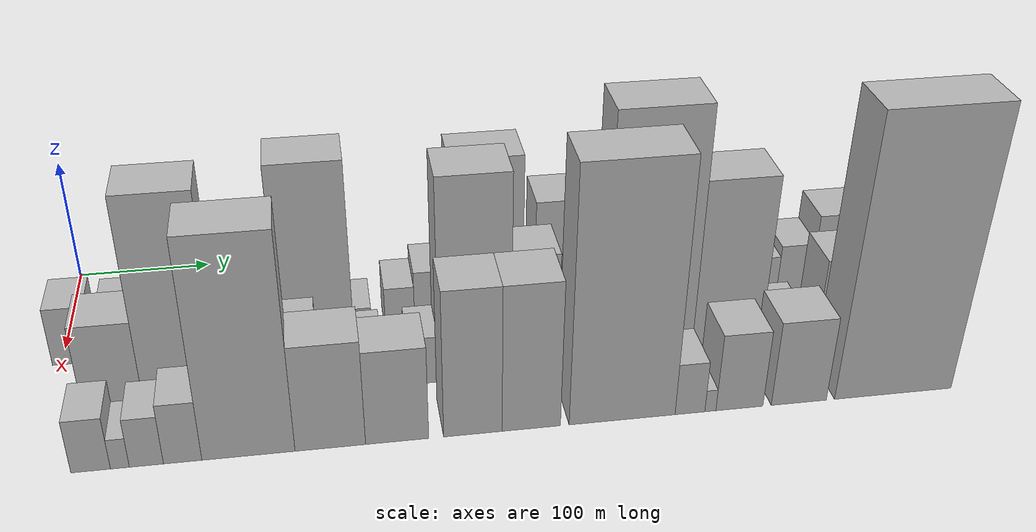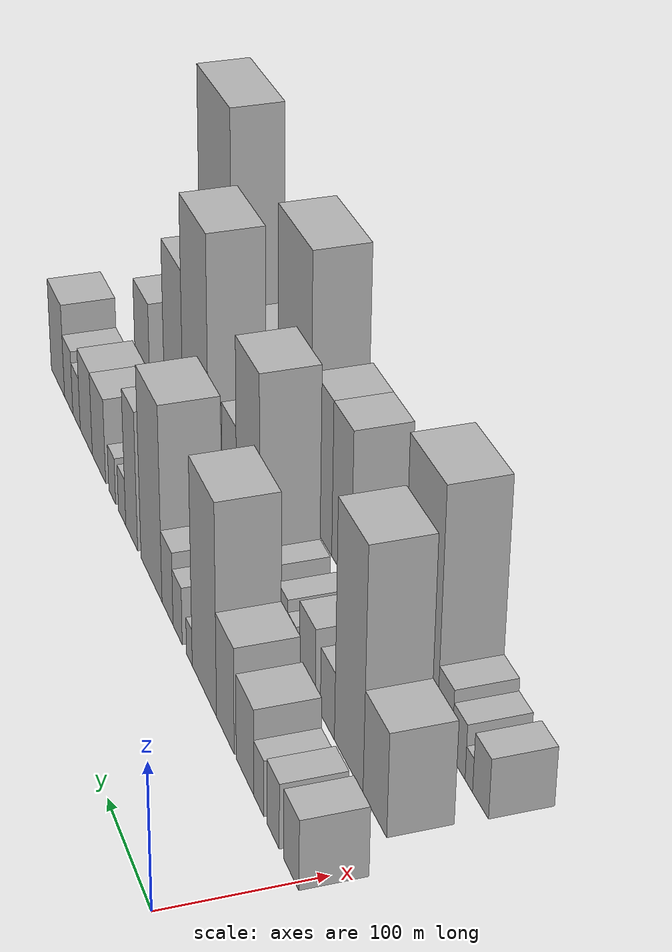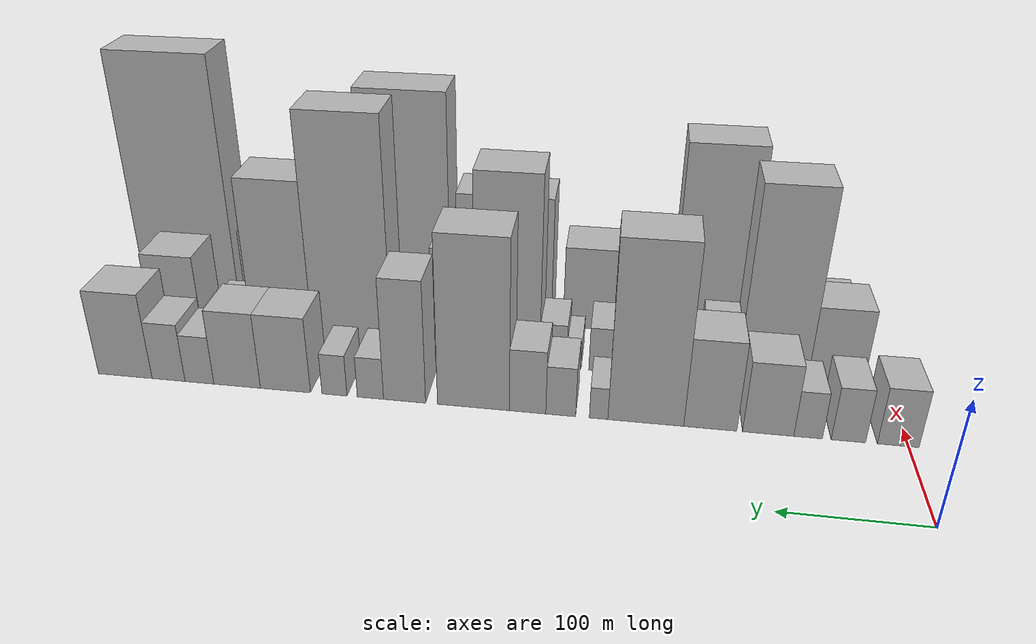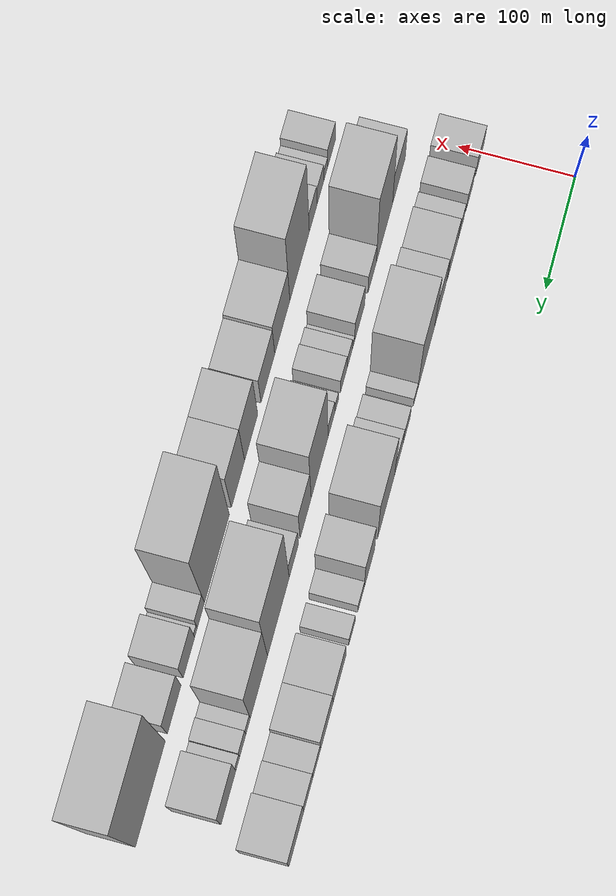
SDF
<sdf version="1.6">
 <world name="default">
  <model name="building_15">
   <static>1</static>
   <pose>100.0000 7.3285 0 0.000000 0.000000 0.000000</pose>
   <link name="link">
    <pose>0 0 24.00 0 0 0</pose>
    <collision name="collision"><geometry><box><size>40.0000 28.1079 48.0000</size></box></geometry></collision>
    <visual name="visual">
     <cast_shadows>0</cast_shadows>
     <geometry><box><size>40.0000 28.1079 48.0000</size></box></geometry>
     <material>
      <script>
       <uri>model://HANNAS_wall/materials/scripts</uri>
       <uri>model://HANNAS_wall/materials/textures</uri>
       <name>vrc/HANNAS_wall</name>
      </script>
     </material>
    </visual>
   </link>
  </model>
  <model name="building_16">
   <static>1</static>
   <pose>100.0000 41.1134 0 0.000000 0.000000 0.000000</pose>
   <link name="link">
    <pose>0 0 22.50 0 0 0</pose>
    <collision name="collision"><geometry><box><size>40.0000 23.4620 45.0000</size></box></geometry></collision>
    <visual name="visual">
     <cast_shadows>0</cast_shadows>
     <geometry><box><size>40.0000 23.4620 45.0000</size></box></geometry>
     <material>
      <script>
       <uri>model://HANNAS_wall/materials/scripts</uri>
       <uri>model://HANNAS_wall/materials/textures</uri>
       <name>vrc/HANNAS_wall</name>
      </script>
     </material>
    </visual>
   </link>
  </model>
  <model name="building_17">
   <static>1</static>
   <pose>100.0000 68.7270 0 0.000000 0.000000 0.000000</pose>
   <link name="link">
    <pose>0 0 19.50 0 0 0</pose>
    <collision name="collision"><geometry><box><size>40.0000 19.7653 39.0000</size></box></geometry></collision>
    <visual name="visual">
     <cast_shadows>0</cast_shadows>
     <geometry><box><size>40.0000 19.7653 39.0000</size></box></geometry>
     <material>
      <script>
       <uri>model://HANNAS_wall/materials/scripts</uri>
       <uri>model://HANNAS_wall/materials/textures</uri>
       <name>vrc/HANNAS_wall</name>
      </script>
     </material>
    </visual>
   </link>
  </model>
  <model name="building_18">
   <static>1</static>
   <pose>100.0000 96.4455 0 0.000000 0.000000 0.000000</pose>
   <link name="link">
    <pose>0 0 30.00 0 0 0</pose>
    <collision name="collision"><geometry><box><size>40.0000 35.6717 60.0000</size></box></geometry></collision>
    <visual name="visual">
     <cast_shadows>0</cast_shadows>
     <geometry><box><size>40.0000 35.6717 60.0000</size></box></geometry>
     <material>
      <script>
       <uri>model://HANNAS_wall/materials/scripts</uri>
       <uri>model://HANNAS_wall/materials/textures</uri>
       <name>vrc/HANNAS_wall</name>
      </script>
     </material>
    </visual>
   </link>
  </model>
  <model name="building_19">
   <static>1</static>
   <pose>100.0000 137.0450 0 0.000000 0.000000 0.000000</pose>
   <link name="link">
    <pose>0 0 37.50 0 0 0</pose>
    <collision name="collision"><geometry><box><size>40.0000 37.5273 75.0000</size></box></geometry></collision>
    <visual name="visual">
     <cast_shadows>0</cast_shadows>
     <geometry><box><size>40.0000 37.5273 75.0000</size></box></geometry>
     <material>
      <script>
       <uri>model://HANNAS_wall/materials/scripts</uri>
       <uri>model://HANNAS_wall/materials/textures</uri>
       <name>vrc/HANNAS_wall</name>
      </script>
     </material>
    </visual>
   </link>
  </model>
  <model name="building_20">
   <static>1</static>
   <pose>100.0000 183.0743 0 0.000000 0.000000 0.000000</pose>
   <link name="link">
    <pose>0 0 75.00 0 0 0</pose>
    <collision name="collision"><geometry><box><size>40.0000 54.5314 150.0000</size></box></geometry></collision>
    <visual name="visual">
     <cast_shadows>0</cast_shadows>
     <geometry><box><size>40.0000 54.5314 150.0000</size></box></geometry>
     <material>
      <script>
       <uri>model://HANNAS_wall/materials/scripts</uri>
       <uri>model://HANNAS_wall/materials/textures</uri>
       <name>vrc/HANNAS_wall</name>
      </script>
     </material>
    </visual>
   </link>
  </model>
  <model name="building_21">
   <static>1</static>
   <pose>100.0000 217.0555 0 0.000000 0.000000 0.000000</pose>
   <link name="link">
    <pose>0 0 13.50 0 0 0</pose>
    <collision name="collision"><geometry><box><size>40.0000 13.4309 27.0000</size></box></geometry></collision>
    <visual name="visual">
     <cast_shadows>0</cast_shadows>
     <geometry><box><size>40.0000 13.4309 27.0000</size></box></geometry>
     <material>
      <script>
       <uri>model://HANNAS_wall/materials/scripts</uri>
       <uri>model://HANNAS_wall/materials/textures</uri>
       <name>vrc/HANNAS_wall</name>
      </script>
     </material>
    </visual>
   </link>
  </model>
  <model name="building_22">
   <static>1</static>
   <pose>100.0000 244.7112 0 0.000000 0.000000 0.000000</pose>
   <link name="link">
    <pose>0 0 21.00 0 0 0</pose>
    <collision name="collision"><geometry><box><size>40.0000 21.8806 42.0000</size></box></geometry></collision>
    <visual name="visual">
     <cast_shadows>0</cast_shadows>
     <geometry><box><size>40.0000 21.8806 42.0000</size></box></geometry>
     <material>
      <script>
       <uri>model://HANNAS_wall/materials/scripts</uri>
       <uri>model://HANNAS_wall/materials/textures</uri>
       <name>vrc/HANNAS_wall</name>
      </script>
     </material>
    </visual>
   </link>
  </model>
  <model name="building_23">
   <static>1</static>
   <pose>100.0000 269.1983 0 0.000000 0.000000 0.000000</pose>
   <link name="link">
    <pose>0 0 27.00 0 0 0</pose>
    <collision name="collision"><geometry><box><size>40.0000 27.0935 54.0000</size></box></geometry></collision>
    <visual name="visual">
     <cast_shadows>0</cast_shadows>
     <geometry><box><size>40.0000 27.0935 54.0000</size></box></geometry>
     <material>
      <script>
       <uri>model://HANNAS_wall/materials/scripts</uri>
       <uri>model://HANNAS_wall/materials/textures</uri>
       <name>vrc/HANNAS_wall</name>
      </script>
     </material>
    </visual>
   </link>
  </model>
  <model name="building_24">
   <static>1</static>
   <pose>100.0000 309.6436 0 0.000000 0.000000 0.000000</pose>
   <link name="link">
    <pose>0 0 72.00 0 0 0</pose>
    <collision name="collision"><geometry><box><size>40.0000 53.7971 144.0000</size></box></geometry></collision>
    <visual name="visual">
     <cast_shadows>0</cast_shadows>
     <geometry><box><size>40.0000 53.7971 144.0000</size></box></geometry>
     <material>
      <script>
       <uri>model://HANNAS_wall/materials/scripts</uri>
       <uri>model://HANNAS_wall/materials/textures</uri>
       <name>vrc/HANNAS_wall</name>
      </script>
     </material>
    </visual>
   </link>
  </model>
  <model name="building_25">
   <static>1</static>
   <pose>100.0000 361.6210 0 0.000000 0.000000 0.000000</pose>
   <link name="link">
    <pose>0 0 52.50 0 0 0</pose>
    <collision name="collision"><geometry><box><size>40.0000 32.1577 105.0000</size></box></geometry></collision>
    <visual name="visual">
     <cast_shadows>0</cast_shadows>
     <geometry><box><size>40.0000 32.1577 105.0000</size></box></geometry>
     <material>
      <script>
       <uri>model://HANNAS_wall/materials/scripts</uri>
       <uri>model://HANNAS_wall/materials/textures</uri>
       <name>vrc/HANNAS_wall</name>
      </script>
     </material>
    </visual>
   </link>
  </model>
  <model name="building_26">
   <static>1</static>
   <pose>100.0000 387.7952 0 0.000000 0.000000 0.000000</pose>
   <link name="link">
    <pose>0 0 18.00 0 0 0</pose>
    <collision name="collision"><geometry><box><size>40.0000 20.1906 36.0000</size></box></geometry></collision>
    <visual name="visual">
     <cast_shadows>0</cast_shadows>
     <geometry><box><size>40.0000 20.1906 36.0000</size></box></geometry>
     <material>
      <script>
       <uri>model://HANNAS_wall/materials/scripts</uri>
       <uri>model://HANNAS_wall/materials/textures</uri>
       <name>vrc/HANNAS_wall</name>
      </script>
     </material>
    </visual>
   </link>
  </model>
  <model name="building_27">
   <static>1</static>
   <pose>100.0000 415.6163 0 0.000000 0.000000 0.000000</pose>
   <link name="link">
    <pose>0 0 18.00 0 0 0</pose>
    <collision name="collision"><geometry><box><size>40.0000 19.4518 36.0000</size></box></geometry></collision>
    <visual name="visual">
     <cast_shadows>0</cast_shadows>
     <geometry><box><size>40.0000 19.4518 36.0000</size></box></geometry>
     <material>
      <script>
       <uri>model://HANNAS_wall/materials/scripts</uri>
       <uri>model://HANNAS_wall/materials/textures</uri>
       <name>vrc/HANNAS_wall</name>
      </script>
     </material>
    </visual>
   </link>
  </model>
  <model name="building_28">
   <static>1</static>
   <pose>100.0000 454.0794 0 0.000000 0.000000 0.000000</pose>
   <link name="link">
    <pose>0 0 33.00 0 0 0</pose>
    <collision name="collision"><geometry><box><size>40.0000 39.4744 66.0000</size></box></geometry></collision>
    <visual name="visual">
     <cast_shadows>0</cast_shadows>
     <geometry><box><size>40.0000 39.4744 66.0000</size></box></geometry>
     <material>
      <script>
       <uri>model://HANNAS_wall/materials/scripts</uri>
       <uri>model://HANNAS_wall/materials/textures</uri>
       <name>vrc/HANNAS_wall</name>
      </script>
     </material>
    </visual>
   </link>
  </model>
  <model name="building_29">
   <static>1</static>
   <pose>100.0000 492.4047 0 0.000000 0.000000 0.000000</pose>
   <link name="link">
    <pose>0 0 33.00 0 0 0</pose>
    <collision name="collision"><geometry><box><size>40.0000 37.1762 66.0000</size></box></geometry></collision>
    <visual name="visual">
     <cast_shadows>0</cast_shadows>
     <geometry><box><size>40.0000 37.1762 66.0000</size></box></geometry>
     <material>
      <script>
       <uri>model://HANNAS_wall/materials/scripts</uri>
       <uri>model://HANNAS_wall/materials/textures</uri>
       <name>vrc/HANNAS_wall</name>
      </script>
     </material>
    </visual>
   </link>
  </model>
  <model name="building_30">
   <static>1</static>
   <pose>100.0000 522.6397 0 0.000000 0.000000 0.000000</pose>
   <link name="link">
    <pose>0 0 21.00 0 0 0</pose>
    <collision name="collision"><geometry><box><size>40.0000 23.2936 42.0000</size></box></geometry></collision>
    <visual name="visual">
     <cast_shadows>0</cast_shadows>
     <geometry><box><size>40.0000 23.2936 42.0000</size></box></geometry>
     <material>
      <script>
       <uri>model://HANNAS_wall/materials/scripts</uri>
       <uri>model://HANNAS_wall/materials/textures</uri>
       <name>vrc/HANNAS_wall</name>
      </script>
     </material>
    </visual>
   </link>
  </model>
  <model name="building_31">
   <static>1</static>
   <pose>100.0000 547.7002 0 0.000000 0.000000 0.000000</pose>
   <link name="link">
    <pose>0 0 25.50 0 0 0</pose>
    <collision name="collision"><geometry><box><size>40.0000 26.8274 51.0000</size></box></geometry></collision>
    <visual name="visual">
     <cast_shadows>0</cast_shadows>
     <geometry><box><size>40.0000 26.8274 51.0000</size></box></geometry>
     <material>
      <script>
       <uri>model://HANNAS_wall/materials/scripts</uri>
       <uri>model://HANNAS_wall/materials/textures</uri>
       <name>vrc/HANNAS_wall</name>
      </script>
     </material>
    </visual>
   </link>
  </model>
  <model name="building_32">
   <static>1</static>
   <pose>100.0000 583.1854 0 0.000000 0.000000 0.000000</pose>
   <link name="link">
    <pose>0 0 37.50 0 0 0</pose>
    <collision name="collision"><geometry><box><size>40.0000 44.1432 75.0000</size></box></geometry></collision>
    <visual name="visual">
     <cast_shadows>0</cast_shadows>
     <geometry><box><size>40.0000 44.1432 75.0000</size></box></geometry>
     <material>
      <script>
       <uri>model://HANNAS_wall/materials/scripts</uri>
       <uri>model://HANNAS_wall/materials/textures</uri>
       <name>vrc/HANNAS_wall</name>
      </script>
     </material>
    </visual>
   </link>
  </model>
  <model name="building_50">
   <static>1</static>
   <pose>160.0000 41.8229 0 0.000000 0.000000 0.000000</pose>
   <link name="link">
    <pose>0 0 36.00 0 0 0</pose>
    <collision name="collision"><geometry><box><size>40.0000 40.9516 72.0000</size></box></geometry></collision>
    <visual name="visual">
     <cast_shadows>0</cast_shadows>
     <geometry><box><size>40.0000 40.9516 72.0000</size></box></geometry>
     <material>
      <script>
       <uri>model://HANNAS_wall/materials/scripts</uri>
       <uri>model://HANNAS_wall/materials/textures</uri>
       <name>vrc/HANNAS_wall</name>
      </script>
     </material>
    </visual>
   </link>
  </model>
  <model name="building_51">
   <static>1</static>
   <pose>160.0000 88.3106 0 0.000000 0.000000 0.000000</pose>
   <link name="link">
    <pose>0 0 84.00 0 0 0</pose>
    <collision name="collision"><geometry><box><size>40.0000 52.0237 168.0000</size></box></geometry></collision>
    <visual name="visual">
     <cast_shadows>0</cast_shadows>
     <geometry><box><size>40.0000 52.0237 168.0000</size></box></geometry>
     <material>
      <script>
       <uri>model://HANNAS_wall/materials/scripts</uri>
       <uri>model://HANNAS_wall/materials/textures</uri>
       <name>vrc/HANNAS_wall</name>
      </script>
     </material>
    </visual>
   </link>
  </model>
  <model name="building_52">
   <static>1</static>
   <pose>160.0000 127.7563 0 0.000000 0.000000 0.000000</pose>
   <link name="link">
    <pose>0 0 24.00 0 0 0</pose>
    <collision name="collision"><geometry><box><size>40.0000 26.8676 48.0000</size></box></geometry></collision>
    <visual name="visual">
     <cast_shadows>0</cast_shadows>
     <geometry><box><size>40.0000 26.8676 48.0000</size></box></geometry>
     <material>
      <script>
       <uri>model://HANNAS_wall/materials/scripts</uri>
       <uri>model://HANNAS_wall/materials/textures</uri>
       <name>vrc/HANNAS_wall</name>
      </script>
     </material>
    </visual>
   </link>
  </model>
  <model name="building_53">
   <static>1</static>
   <pose>160.0000 167.0010 0 0.000000 0.000000 0.000000</pose>
   <link name="link">
    <pose>0 0 27.00 0 0 0</pose>
    <collision name="collision"><geometry><box><size>40.0000 31.6218 54.0000</size></box></geometry></collision>
    <visual name="visual">
     <cast_shadows>0</cast_shadows>
     <geometry><box><size>40.0000 31.6218 54.0000</size></box></geometry>
     <material>
      <script>
       <uri>model://HANNAS_wall/materials/scripts</uri>
       <uri>model://HANNAS_wall/materials/textures</uri>
       <name>vrc/HANNAS_wall</name>
      </script>
     </material>
    </visual>
   </link>
  </model>
  <model name="building_54">
   <static>1</static>
   <pose>160.0000 186.2964 0 0.000000 0.000000 0.000000</pose>
   <link name="link">
    <pose>0 0 7.50 0 0 0</pose>
    <collision name="collision"><geometry><box><size>40.0000 6.9691 15.0000</size></box></geometry></collision>
    <visual name="visual">
     <cast_shadows>0</cast_shadows>
     <geometry><box><size>40.0000 6.9691 15.0000</size></box></geometry>
     <material>
      <script>
       <uri>model://HANNAS_wall/materials/scripts</uri>
       <uri>model://HANNAS_wall/materials/textures</uri>
       <name>vrc/HANNAS_wall</name>
      </script>
     </material>
    </visual>
   </link>
  </model>
  <model name="building_55">
   <static>1</static>
   <pose>160.0000 198.1976 0 0.000000 0.000000 0.000000</pose>
   <link name="link">
    <pose>0 0 15.00 0 0 0</pose>
    <collision name="collision"><geometry><box><size>40.0000 16.8332 30.0000</size></box></geometry></collision>
    <visual name="visual">
     <cast_shadows>0</cast_shadows>
     <geometry><box><size>40.0000 16.8332 30.0000</size></box></geometry>
     <material>
      <script>
       <uri>model://HANNAS_wall/materials/scripts</uri>
       <uri>model://HANNAS_wall/materials/textures</uri>
       <name>vrc/HANNAS_wall</name>
      </script>
     </material>
    </visual>
   </link>
  </model>
  <model name="building_56">
   <static>1</static>
   <pose>160.0000 217.1379 0 0.000000 0.000000 0.000000</pose>
   <link name="link">
    <pose>0 0 19.50 0 0 0</pose>
    <collision name="collision"><geometry><box><size>40.0000 21.0475 39.0000</size></box></geometry></collision>
    <visual name="visual">
     <cast_shadows>0</cast_shadows>
     <geometry><box><size>40.0000 21.0475 39.0000</size></box></geometry>
     <material>
      <script>
       <uri>model://HANNAS_wall/materials/scripts</uri>
       <uri>model://HANNAS_wall/materials/textures</uri>
       <name>vrc/HANNAS_wall</name>
      </script>
     </material>
    </visual>
   </link>
  </model>
  <model name="building_57">
   <static>1</static>
   <pose>160.0000 239.4100 0 0.000000 0.000000 0.000000</pose>
   <link name="link">
    <pose>0 0 12.00 0 0 0</pose>
    <collision name="collision"><geometry><box><size>40.0000 11.4966 24.0000</size></box></geometry></collision>
    <visual name="visual">
     <cast_shadows>0</cast_shadows>
     <geometry><box><size>40.0000 11.4966 24.0000</size></box></geometry>
     <material>
      <script>
       <uri>model://HANNAS_wall/materials/scripts</uri>
       <uri>model://HANNAS_wall/materials/textures</uri>
       <name>vrc/HANNAS_wall</name>
      </script>
     </material>
    </visual>
   </link>
  </model>
  <model name="building_58">
   <static>1</static>
   <pose>160.0000 255.7840 0 0.000000 0.000000 0.000000</pose>
   <link name="link">
    <pose>0 0 19.50 0 0 0</pose>
    <collision name="collision"><geometry><box><size>40.0000 21.2515 39.0000</size></box></geometry></collision>
    <visual name="visual">
     <cast_shadows>0</cast_shadows>
     <geometry><box><size>40.0000 21.2515 39.0000</size></box></geometry>
     <material>
      <script>
       <uri>model://HANNAS_wall/materials/scripts</uri>
       <uri>model://HANNAS_wall/materials/textures</uri>
       <name>vrc/HANNAS_wall</name>
      </script>
     </material>
    </visual>
   </link>
  </model>
  <model name="building_59">
   <static>1</static>
   <pose>160.0000 292.4044 0 0.000000 0.000000 0.000000</pose>
   <link name="link">
    <pose>0 0 82.50 0 0 0</pose>
    <collision name="collision"><geometry><box><size>40.0000 51.9892 165.0000</size></box></geometry></collision>
    <visual name="visual">
     <cast_shadows>0</cast_shadows>
     <geometry><box><size>40.0000 51.9892 165.0000</size></box></geometry>
     <material>
      <script>
       <uri>model://HANNAS_wall/materials/scripts</uri>
       <uri>model://HANNAS_wall/materials/textures</uri>
       <name>vrc/HANNAS_wall</name>
      </script>
     </material>
    </visual>
   </link>
  </model>
  <model name="building_60">
   <static>1</static>
   <pose>160.0000 335.2838 0 0.000000 0.000000 0.000000</pose>
   <link name="link">
    <pose>0 0 49.50 0 0 0</pose>
    <collision name="collision"><geometry><box><size>40.0000 33.7696 99.0000</size></box></geometry></collision>
    <visual name="visual">
     <cast_shadows>0</cast_shadows>
     <geometry><box><size>40.0000 33.7696 99.0000</size></box></geometry>
     <material>
      <script>
       <uri>model://HANNAS_wall/materials/scripts</uri>
       <uri>model://HANNAS_wall/materials/textures</uri>
       <name>vrc/HANNAS_wall</name>
      </script>
     </material>
    </visual>
   </link>
  </model>
  <model name="building_61">
   <static>1</static>
   <pose>160.0000 371.2322 0 0.000000 0.000000 0.000000</pose>
   <link name="link">
    <pose>0 0 27.00 0 0 0</pose>
    <collision name="collision"><geometry><box><size>40.0000 28.1272 54.0000</size></box></geometry></collision>
    <visual name="visual">
     <cast_shadows>0</cast_shadows>
     <geometry><box><size>40.0000 28.1272 54.0000</size></box></geometry>
     <material>
      <script>
       <uri>model://HANNAS_wall/materials/scripts</uri>
       <uri>model://HANNAS_wall/materials/textures</uri>
       <name>vrc/HANNAS_wall</name>
      </script>
     </material>
    </visual>
   </link>
  </model>
  <model name="building_62">
   <static>1</static>
   <pose>160.0000 417.8468 0 0.000000 0.000000 0.000000</pose>
   <link name="link">
    <pose>0 0 102.00 0 0 0</pose>
    <collision name="collision"><geometry><box><size>40.0000 65.1021 204.0000</size></box></geometry></collision>
    <visual name="visual">
     <cast_shadows>0</cast_shadows>
     <geometry><box><size>40.0000 65.1021 204.0000</size></box></geometry>
     <material>
      <script>
       <uri>model://HANNAS_wall/materials/scripts</uri>
       <uri>model://HANNAS_wall/materials/textures</uri>
       <name>vrc/HANNAS_wall</name>
      </script>
     </material>
    </visual>
   </link>
  </model>
  <model name="building_63">
   <static>1</static>
   <pose>160.0000 476.0306 0 0.000000 0.000000 0.000000</pose>
   <link name="link">
    <pose>0 0 73.50 0 0 0</pose>
    <collision name="collision"><geometry><box><size>40.0000 51.2655 147.0000</size></box></geometry></collision>
    <visual name="visual">
     <cast_shadows>0</cast_shadows>
     <geometry><box><size>40.0000 51.2655 147.0000</size></box></geometry>
     <material>
      <script>
       <uri>model://HANNAS_wall/materials/scripts</uri>
       <uri>model://HANNAS_wall/materials/textures</uri>
       <name>vrc/HANNAS_wall</name>
      </script>
     </material>
    </visual>
   </link>
  </model>
  <model name="building_64">
   <static>1</static>
   <pose>160.0000 508.1767 0 0.000000 0.000000 0.000000</pose>
   <link name="link">
    <pose>0 0 13.50 0 0 0</pose>
    <collision name="collision"><geometry><box><size>40.0000 13.0265 27.0000</size></box></geometry></collision>
    <visual name="visual">
     <cast_shadows>0</cast_shadows>
     <geometry><box><size>40.0000 13.0265 27.0000</size></box></geometry>
     <material>
      <script>
       <uri>model://HANNAS_wall/materials/scripts</uri>
       <uri>model://HANNAS_wall/materials/textures</uri>
       <name>vrc/HANNAS_wall</name>
      </script>
     </material>
    </visual>
   </link>
  </model>
  <model name="building_65">
   <static>1</static>
   <pose>160.0000 523.8907 0 0.000000 0.000000 0.000000</pose>
   <link name="link">
    <pose>0 0 16.50 0 0 0</pose>
    <collision name="collision"><geometry><box><size>40.0000 18.4015 33.0000</size></box></geometry></collision>
    <visual name="visual">
     <cast_shadows>0</cast_shadows>
     <geometry><box><size>40.0000 18.4015 33.0000</size></box></geometry>
     <material>
      <script>
       <uri>model://HANNAS_wall/materials/scripts</uri>
       <uri>model://HANNAS_wall/materials/textures</uri>
       <name>vrc/HANNAS_wall</name>
      </script>
     </material>
    </visual>
   </link>
  </model>
  <model name="building_66">
   <static>1</static>
   <pose>160.0000 538.7740 0 0.000000 0.000000 0.000000</pose>
   <link name="link">
    <pose>0 0 12.00 0 0 0</pose>
    <collision name="collision"><geometry><box><size>40.0000 11.3651 24.0000</size></box></geometry></collision>
    <visual name="visual">
     <cast_shadows>0</cast_shadows>
     <geometry><box><size>40.0000 11.3651 24.0000</size></box></geometry>
     <material>
      <script>
       <uri>model://HANNAS_wall/materials/scripts</uri>
       <uri>model://HANNAS_wall/materials/textures</uri>
       <name>vrc/HANNAS_wall</name>
      </script>
     </material>
    </visual>
   </link>
  </model>
  <model name="building_67">
   <static>1</static>
   <pose>160.0000 566.1768 0 0.000000 0.000000 0.000000</pose>
   <link name="link">
    <pose>0 0 37.50 0 0 0</pose>
    <collision name="collision"><geometry><box><size>40.0000 43.4404 75.0000</size></box></geometry></collision>
    <visual name="visual">
     <cast_shadows>0</cast_shadows>
     <geometry><box><size>40.0000 43.4404 75.0000</size></box></geometry>
     <material>
      <script>
       <uri>model://HANNAS_wall/materials/scripts</uri>
       <uri>model://HANNAS_wall/materials/textures</uri>
       <name>vrc/HANNAS_wall</name>
      </script>
     </material>
    </visual>
   </link>
  </model>
  <model name="building_87">
   <static>1</static>
   <pose>220.0000 32.5463 0 0.000000 0.000000 0.000000</pose>
   <link name="link">
    <pose>0 0 21.00 0 0 0</pose>
    <collision name="collision"><geometry><box><size>40.0000 25.0198 42.0000</size></box></geometry></collision>
    <visual name="visual">
     <cast_shadows>0</cast_shadows>
     <geometry><box><size>40.0000 25.0198 42.0000</size></box></geometry>
     <material>
      <script>
       <uri>model://HANNAS_wall/materials/scripts</uri>
       <uri>model://HANNAS_wall/materials/textures</uri>
       <name>vrc/HANNAS_wall</name>
      </script>
     </material>
    </visual>
   </link>
  </model>
  <model name="building_88">
   <static>1</static>
   <pose>220.0000 51.0381 0 0.000000 0.000000 0.000000</pose>
   <link name="link">
    <pose>0 0 12.00 0 0 0</pose>
    <collision name="collision"><geometry><box><size>40.0000 11.9637 24.0000</size></box></geometry></collision>
    <visual name="visual">
     <cast_shadows>0</cast_shadows>
     <geometry><box><size>40.0000 11.9637 24.0000</size></box></geometry>
     <material>
      <script>
       <uri>model://HANNAS_wall/materials/scripts</uri>
       <uri>model://HANNAS_wall/materials/textures</uri>
       <name>vrc/HANNAS_wall</name>
      </script>
     </material>
    </visual>
   </link>
  </model>
  <model name="building_89">
   <static>1</static>
   <pose>220.0000 67.9119 0 0.000000 0.000000 0.000000</pose>
   <link name="link">
    <pose>0 0 19.50 0 0 0</pose>
    <collision name="collision"><geometry><box><size>40.0000 21.7838 39.0000</size></box></geometry></collision>
    <visual name="visual">
     <cast_shadows>0</cast_shadows>
     <geometry><box><size>40.0000 21.7838 39.0000</size></box></geometry>
     <material>
      <script>
       <uri>model://HANNAS_wall/materials/scripts</uri>
       <uri>model://HANNAS_wall/materials/textures</uri>
       <name>vrc/HANNAS_wall</name>
      </script>
     </material>
    </visual>
   </link>
  </model>
  <model name="building_90">
   <static>1</static>
   <pose>220.0000 91.1208 0 0.000000 0.000000 0.000000</pose>
   <link name="link">
    <pose>0 0 24.00 0 0 0</pose>
    <collision name="collision"><geometry><box><size>40.0000 24.6341 48.0000</size></box></geometry></collision>
    <visual name="visual">
     <cast_shadows>0</cast_shadows>
     <geometry><box><size>40.0000 24.6341 48.0000</size></box></geometry>
     <material>
      <script>
       <uri>model://HANNAS_wall/materials/scripts</uri>
       <uri>model://HANNAS_wall/materials/textures</uri>
       <name>vrc/HANNAS_wall</name>
      </script>
     </material>
    </visual>
   </link>
  </model>
  <model name="building_91">
   <static>1</static>
   <pose>220.0000 133.7132 0 0.000000 0.000000 0.000000</pose>
   <link name="link">
    <pose>0 0 85.50 0 0 0</pose>
    <collision name="collision"><geometry><box><size>40.0000 60.5506 171.0000</size></box></geometry></collision>
    <visual name="visual">
     <cast_shadows>0</cast_shadows>
     <geometry><box><size>40.0000 60.5506 171.0000</size></box></geometry>
     <material>
      <script>
       <uri>model://HANNAS_wall/materials/scripts</uri>
       <uri>model://HANNAS_wall/materials/textures</uri>
       <name>vrc/HANNAS_wall</name>
      </script>
     </material>
    </visual>
   </link>
  </model>
  <model name="building_92">
   <static>1</static>
   <pose>220.0000 187.2578 0 0.000000 0.000000 0.000000</pose>
   <link name="link">
    <pose>0 0 42.00 0 0 0</pose>
    <collision name="collision"><geometry><box><size>40.0000 46.5386 84.0000</size></box></geometry></collision>
    <visual name="visual">
     <cast_shadows>0</cast_shadows>
     <geometry><box><size>40.0000 46.5386 84.0000</size></box></geometry>
     <material>
      <script>
       <uri>model://HANNAS_wall/materials/scripts</uri>
       <uri>model://HANNAS_wall/materials/textures</uri>
       <name>vrc/HANNAS_wall</name>
      </script>
     </material>
    </visual>
   </link>
  </model>
  <model name="building_93">
   <static>1</static>
   <pose>220.0000 231.6188 0 0.000000 0.000000 0.000000</pose>
   <link name="link">
    <pose>0 0 37.50 0 0 0</pose>
    <collision name="collision"><geometry><box><size>40.0000 42.1835 75.0000</size></box></geometry></collision>
    <visual name="visual">
     <cast_shadows>0</cast_shadows>
     <geometry><box><size>40.0000 42.1835 75.0000</size></box></geometry>
     <material>
      <script>
       <uri>model://HANNAS_wall/materials/scripts</uri>
       <uri>model://HANNAS_wall/materials/textures</uri>
       <name>vrc/HANNAS_wall</name>
      </script>
     </material>
    </visual>
   </link>
  </model>
  <model name="building_94">
   <static>1</static>
   <pose>220.0000 282.5240 0 0.000000 0.000000 0.000000</pose>
   <link name="link">
    <pose>0 0 58.50 0 0 0</pose>
    <collision name="collision"><geometry><box><size>40.0000 39.6269 117.0000</size></box></geometry></collision>
    <visual name="visual">
     <cast_shadows>0</cast_shadows>
     <geometry><box><size>40.0000 39.6269 117.0000</size></box></geometry>
     <material>
      <script>
       <uri>model://HANNAS_wall/materials/scripts</uri>
       <uri>model://HANNAS_wall/materials/textures</uri>
       <name>vrc/HANNAS_wall</name>
      </script>
     </material>
    </visual>
   </link>
  </model>
  <model name="building_95">
   <static>1</static>
   <pose>220.0000 322.3343 0 0.000000 0.000000 0.000000</pose>
   <link name="link">
    <pose>0 0 58.50 0 0 0</pose>
    <collision name="collision"><geometry><box><size>40.0000 39.9936 117.0000</size></box></geometry></collision>
    <visual name="visual">
     <cast_shadows>0</cast_shadows>
     <geometry><box><size>40.0000 39.9936 117.0000</size></box></geometry>
     <material>
      <script>
       <uri>model://HANNAS_wall/materials/scripts</uri>
       <uri>model://HANNAS_wall/materials/textures</uri>
       <name>vrc/HANNAS_wall</name>
      </script>
     </material>
    </visual>
   </link>
  </model>
  <model name="building_96">
   <static>1</static>
   <pose>220.0000 385.2842 0 0.000000 0.000000 0.000000</pose>
   <link name="link">
    <pose>0 0 100.50 0 0 0</pose>
    <collision name="collision"><geometry><box><size>40.0000 73.9063 201.0000</size></box></geometry></collision>
    <visual name="visual">
     <cast_shadows>0</cast_shadows>
     <geometry><box><size>40.0000 73.9063 201.0000</size></box></geometry>
     <material>
      <script>
       <uri>model://HANNAS_wall/materials/scripts</uri>
       <uri>model://HANNAS_wall/materials/textures</uri>
       <name>vrc/HANNAS_wall</name>
      </script>
     </material>
    </visual>
   </link>
  </model>
  <model name="building_97">
   <static>1</static>
   <pose>220.0000 432.7588 0 0.000000 0.000000 0.000000</pose>
   <link name="link">
    <pose>0 0 21.00 0 0 0</pose>
    <collision name="collision"><geometry><box><size>40.0000 21.0429 42.0000</size></box></geometry></collision>
    <visual name="visual">
     <cast_shadows>0</cast_shadows>
     <geometry><box><size>40.0000 21.0429 42.0000</size></box></geometry>
     <material>
      <script>
       <uri>model://HANNAS_wall/materials/scripts</uri>
       <uri>model://HANNAS_wall/materials/textures</uri>
       <name>vrc/HANNAS_wall</name>
      </script>
     </material>
    </visual>
   </link>
  </model>
  <model name="building_98">
   <static>1</static>
   <pose>220.0000 447.1840 0 0.000000 0.000000 0.000000</pose>
   <link name="link">
    <pose>0 0 9.00 0 0 0</pose>
    <collision name="collision"><geometry><box><size>40.0000 7.8073 18.0000</size></box></geometry></collision>
    <visual name="visual">
     <cast_shadows>0</cast_shadows>
     <geometry><box><size>40.0000 7.8073 18.0000</size></box></geometry>
     <material>
      <script>
       <uri>model://HANNAS_wall/materials/scripts</uri>
       <uri>model://HANNAS_wall/materials/textures</uri>
       <name>vrc/HANNAS_wall</name>
      </script>
     </material>
    </visual>
   </link>
  </model>
  <model name="building_99">
   <static>1</static>
   <pose>220.0000 467.8731 0 0.000000 0.000000 0.000000</pose>
   <link name="link">
    <pose>0 0 31.50 0 0 0</pose>
    <collision name="collision"><geometry><box><size>40.0000 33.5709 63.0000</size></box></geometry></collision>
    <visual name="visual">
     <cast_shadows>0</cast_shadows>
     <geometry><box><size>40.0000 33.5709 63.0000</size></box></geometry>
     <material>
      <script>
       <uri>model://HANNAS_wall/materials/scripts</uri>
       <uri>model://HANNAS_wall/materials/textures</uri>
       <name>vrc/HANNAS_wall</name>
      </script>
     </material>
    </visual>
   </link>
  </model>
  <model name="building_100">
   <static>1</static>
   <pose>220.0000 510.5419 0 0.000000 0.000000 0.000000</pose>
   <link name="link">
    <pose>0 0 34.50 0 0 0</pose>
    <collision name="collision"><geometry><box><size>40.0000 39.7667 69.0000</size></box></geometry></collision>
    <visual name="visual">
     <cast_shadows>0</cast_shadows>
     <geometry><box><size>40.0000 39.7667 69.0000</size></box></geometry>
     <material>
      <script>
       <uri>model://HANNAS_wall/materials/scripts</uri>
       <uri>model://HANNAS_wall/materials/textures</uri>
       <name>vrc/HANNAS_wall</name>
      </script>
     </material>
    </visual>
   </link>
  </model>
  <model name="building_101">
   <static>1</static>
   <pose>220.0000 579.2488 0 0.000000 0.000000 0.000000</pose>
   <link name="link">
    <pose>0 0 111.00 0 0 0</pose>
    <collision name="collision"><geometry><box><size>40.0000 85.6472 222.0000</size></box></geometry></collision>
    <visual name="visual">
     <cast_shadows>0</cast_shadows>
     <geometry><box><size>40.0000 85.6472 222.0000</size></box></geometry>
     <material>
      <script>
       <uri>model://HANNAS_wall/materials/scripts</uri>
       <uri>model://HANNAS_wall/materials/textures</uri>
       <name>vrc/HANNAS_wall</name>
      </script>
     </material>
    </visual>
   </link>
  </model>
 </world>
</sdf>
